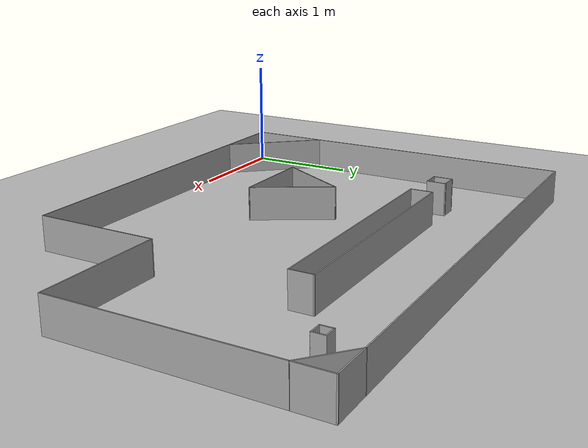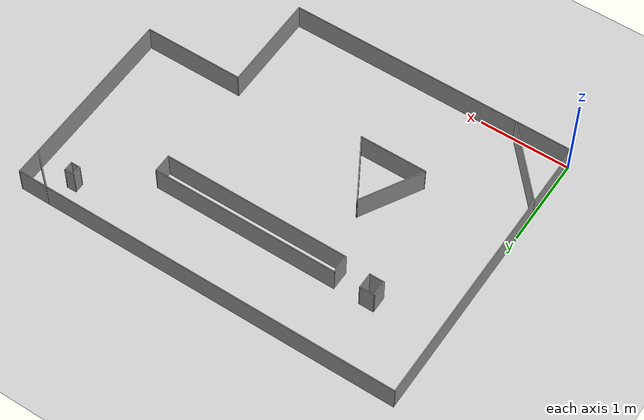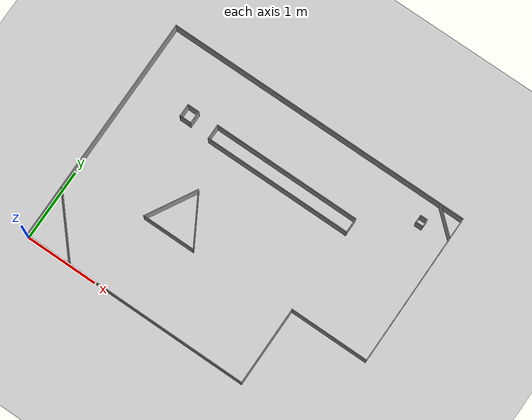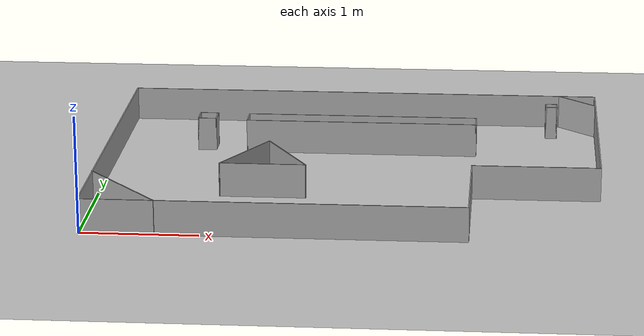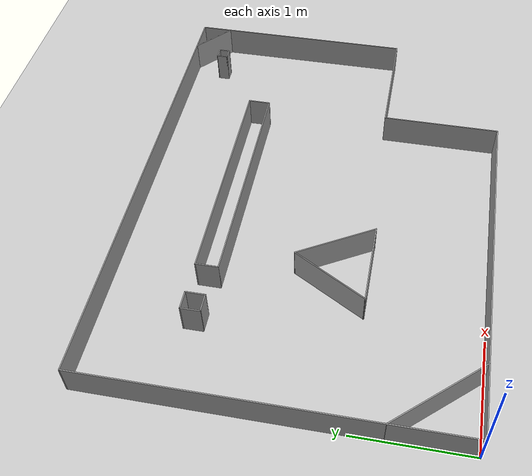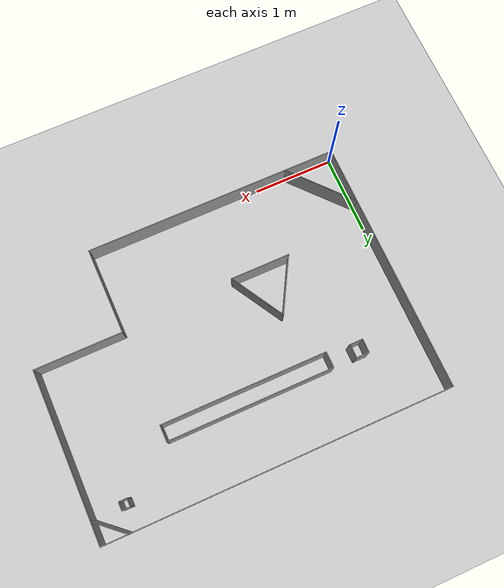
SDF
<sdf version='1.6'>
  <world name='default'>
    <light name='sun' type='directional'>
      <cast_shadows>1</cast_shadows>
      <pose frame=''>0 0 10 0 -0 0</pose>
      <diffuse>0.8 0.8 0.8 1</diffuse>
      <specular>0.1 0.1 0.1 1</specular>
      <attenuation>
        <range>1000</range>
        <constant>0.9</constant>
        <linear>0.01</linear>
        <quadratic>0.001</quadratic>
      </attenuation>
      <direction>-0.5 0.5 -1</direction>
    </light>

    <model name='ground_plane'>
      <static>1</static>
      <link name='link'>
        <collision name='collision'>
          <geometry>
            <plane>
              <normal>0 0 1</normal>
              <size>100 100</size>
            </plane>
          </geometry>
          <surface>
            <friction>
              <ode>
                <mu>100</mu>
                <mu2>50</mu2>
              </ode>
              <torsional>
                <ode/>
              </torsional>
            </friction>
            <contact>
              <ode/>
            </contact>
            <bounce/>
          </surface>
          <max_contacts>10</max_contacts>
        </collision>
        <visual name='visual'>
          <cast_shadows>0</cast_shadows>
          <geometry>
            <plane>
              <normal>0 0 1</normal>
              <size>100 100</size>
            </plane>
          </geometry>
          <material>
            <script>
              <uri>file://media/materials/scripts/gazebo.material</uri>
              <name>Gazebo/Grey</name>
            </script>
          </material>
        </visual>
        <self_collide>0</self_collide>
        <kinematic>0</kinematic>
        <gravity>1</gravity>
      </link>
    </model>

    <gravity>0 0 -9.8</gravity>
    <magnetic_field>6e-06 2.3e-05 -4.2e-05</magnetic_field>
    <atmosphere type='adiabatic'/>
    <physics name='default_physics' default='0' type='ode'>
      <max_step_size>0.001</max_step_size>
      <real_time_factor>1</real_time_factor>
      <real_time_update_rate>1000</real_time_update_rate>
    </physics>

    <scene>
      <ambient>0.4 0.4 0.4 1</ambient>
      <background>0.7 0.7 0.7 1</background>
      <shadows>1</shadows>
    </scene>

    <spherical_coordinates>
      <surface_model>EARTH_WGS84</surface_model>
      <latitude_deg>0</latitude_deg>
      <longitude_deg>0</longitude_deg>
      <elevation>0</elevation>
      <heading_deg>0</heading_deg>
    </spherical_coordinates>

    <model name='rss_box1'>
      <pose frame=''>2.155 1.605 0 0 -0 0</pose>
      <link name='Wall_0'>
        <collision name='Wall_0_Collision'>
          <geometry>
            <box>
              <size>3.22 0.01 0.3</size>
            </box>
          </geometry>
          <pose frame=''>0 0 0.15 0 -0 0</pose>
        </collision>
        <visual name='Wall_0_Visual'>
          <pose frame=''>0 0 0.15 0 -0 0</pose>
          <geometry>
            <box>
              <size>3.22 0.01 0.3</size>
            </box>
          </geometry>
          <material>
            <script>
              <uri>file://media/materials/scripts/gazebo.material</uri>
              <name>Gazebo/Grey</name>
            </script>
            <ambient>1 1 1 1</ambient>
          </material>
          <meta>
            <layer>0</layer>
          </meta>
        </visual>
        <pose frame=''>-0.55 -1.605 0 0 -0 0</pose>
      </link>
      <link name='Wall_11'>
        <collision name='Wall_11_Collision'>
          <geometry>
            <box>
              <size>0.449318 0.01 0.3</size>
            </box>
          </geometry>
          <pose frame=''>0 0 0.15 0 -0 0</pose>
        </collision>
        <visual name='Wall_11_Visual'>
          <pose frame=''>0 0 0.15 0 -0 0</pose>
          <geometry>
            <box>
              <size>0.449318 0.01 0.3</size>
            </box>
          </geometry>
          <material>
            <script>
              <uri>file://media/materials/scripts/gazebo.material</uri>
              <name>Gazebo/Grey</name>
            </script>
            <ambient>1 1 1 1</ambient>
          </material>
          <meta>
            <layer>0</layer>
          </meta>
        </visual>
        <pose frame=''>1.99 1.46 0 0 -0 2.42062</pose>
      </link>
      <link name='Wall_13'>
        <collision name='Wall_13_Collision'>
          <geometry>
            <box>
              <size>0.75 0.01 0.3</size>
            </box>
          </geometry>
          <pose frame=''>0 0 0.15 0 -0 0</pose>
        </collision>
        <visual name='Wall_13_Visual'>
          <pose frame=''>0 0 0.15 0 -0 0</pose>
          <geometry>
            <box>
              <size>0.75 0.01 0.3</size>
            </box>
          </geometry>
          <material>
            <script>
              <uri>file://media/materials/scripts/gazebo.material</uri>
              <name>Gazebo/Grey</name>
            </script>
            <ambient>1 1 1 1</ambient>
          </material>
          <meta>
            <layer>0</layer>
          </meta>
        </visual>
        <pose frame=''>-0.735 -0.595001 0 0 -0 3.14159</pose>
      </link>
      <link name='Wall_15'>
        <collision name='Wall_15_Collision'>
          <geometry>
            <box>
              <size>0.759551 0.01 0.3</size>
            </box>
          </geometry>
          <pose frame=''>0 0 0.15 0 -0 0</pose>
        </collision>
        <visual name='Wall_15_Visual'>
          <pose frame=''>0 0 0.15 0 -0 0</pose>
          <geometry>
            <box>
              <size>0.759551 0.01 0.3</size>
            </box>
          </geometry>
          <material>
            <script>
              <uri>file://media/materials/scripts/gazebo.material</uri>
              <name>Gazebo/Grey</name>
            </script>
            <ambient>1 1 1 1</ambient>
          </material>
          <meta>
            <layer>0</layer>
          </meta>
        </visual>
        <pose frame=''>-0.5525 -0.270501 0 0 -0 2.09474</pose>
      </link>
      <link name='Wall_16'>
        <collision name='Wall_16_Collision'>
          <geometry>
            <box>
              <size>0.754598 0.01 0.3</size>
            </box>
          </geometry>
          <pose frame=''>0 0 0.15 0 -0 0</pose>
        </collision>
        <visual name='Wall_16_Visual'>
          <pose frame=''>0 0 0.15 0 -0 0</pose>
          <geometry>
            <box>
              <size>0.754598 0.01 0.3</size>
            </box>
          </geometry>
          <material>
            <script>
              <uri>file://media/materials/scripts/gazebo.material</uri>
              <name>Gazebo/Grey</name>
            </script>
            <ambient>1 1 1 1</ambient>
          </material>
          <meta>
            <layer>0</layer>
          </meta>
        </visual>
        <pose frame=''>-0.9225 -0.270501 0 0 0 -2.08311</pose>
      </link>
      <link name='Wall_18'>
        <collision name='Wall_18_Collision'>
          <geometry>
            <box>
              <size>2.08 0.01 0.3</size>
            </box>
          </geometry>
          <pose frame=''>0 0 0.15 0 -0 0</pose>
        </collision>
        <visual name='Wall_18_Visual'>
          <pose frame=''>0 0 0.15 0 -0 0</pose>
          <geometry>
            <box>
              <size>2.08 0.01 0.3</size>
            </box>
          </geometry>
          <material>
            <script>
              <uri>file://media/materials/scripts/gazebo.material</uri>
              <name>Gazebo/Grey</name>
            </script>
            <ambient>1 1 1 1</ambient>
          </material>
          <meta>
            <layer>0</layer>
          </meta>
        </visual>
        <pose frame=''>0.03 0.854999 0 0 -0 3.14159</pose>
      </link>
      <link name='Wall_2'>
        <collision name='Wall_2_Collision'>
          <geometry>
            <box>
              <size>1.1 0.01 0.3</size>
            </box>
          </geometry>
          <pose frame=''>0 0 0.15 0 -0 0</pose>
        </collision>
        <visual name='Wall_2_Visual'>
          <pose frame=''>0 0 0.15 0 -0 0</pose>
          <geometry>
            <box>
              <size>1.1 0.01 0.3</size>
            </box>
          </geometry>
          <material>
            <script>
              <uri>file://media/materials/scripts/gazebo.material</uri>
              <name>Gazebo/Grey</name>
            </script>
            <ambient>1 1 1 1</ambient>
          </material>
          <meta>
            <layer>0</layer>
          </meta>
        </visual>
        <pose frame=''>1.055 -1.06 0 0 -0 1.5708</pose>
      </link>
      <link name='Wall_20'>
        <collision name='Wall_20_Collision'>
          <geometry>
            <box>
              <size>0.21 0.01 0.3</size>
            </box>
          </geometry>
          <pose frame=''>0 0 0.15 0 -0 0</pose>
        </collision>
        <visual name='Wall_20_Visual'>
          <pose frame=''>0 0 0.15 0 -0 0</pose>
          <geometry>
            <box>
              <size>0.21 0.01 0.3</size>
            </box>
          </geometry>
          <material>
            <script>
              <uri>file://media/materials/scripts/gazebo.material</uri>
              <name>Gazebo/Grey</name>
            </script>
            <ambient>1 1 1 1</ambient>
          </material>
          <meta>
            <layer>0</layer>
          </meta>
        </visual>
        <pose frame=''>-1.005 0.754999 0 0 0 -1.5708</pose>
      </link>
      <link name='Wall_21'>
        <collision name='Wall_21_Collision'>
          <geometry>
            <box>
              <size>2.08 0.01 0.3</size>
            </box>
          </geometry>
          <pose frame=''>0 0 0.15 0 -0 0</pose>
        </collision>
        <visual name='Wall_21_Visual'>
          <pose frame=''>0 0 0.15 0 -0 0</pose>
          <geometry>
            <box>
              <size>2.08 0.01 0.3</size>
            </box>
          </geometry>
          <material>
            <script>
              <uri>file://media/materials/scripts/gazebo.material</uri>
              <name>Gazebo/Grey</name>
            </script>
            <ambient>1 1 1 1</ambient>
          </material>
          <meta>
            <layer>0</layer>
          </meta>
        </visual>
        <pose frame=''>0.03 0.654999 0 0 -0 0</pose>
      </link>
      <link name='Wall_22'>
        <collision name='Wall_22_Collision'>
          <geometry>
            <box>
              <size>0.21 0.01 0.3</size>
            </box>
          </geometry>
          <pose frame=''>0 0 0.15 0 -0 0</pose>
        </collision>
        <visual name='Wall_22_Visual'>
          <pose frame=''>0 0 0.15 0 -0 0</pose>
          <geometry>
            <box>
              <size>0.21 0.01 0.3</size>
            </box>
          </geometry>
          <material>
            <script>
              <uri>file://media/materials/scripts/gazebo.material</uri>
              <name>Gazebo/Grey</name>
            </script>
            <ambient>1 1 1 1</ambient>
          </material>
          <meta>
            <layer>0</layer>
          </meta>
        </visual>
        <pose frame=''>1.065 0.754999 0 0 -0 1.5708</pose>
      </link>
      <link name='Wall_24'>
        <collision name='Wall_24_Collision'>
          <geometry>
            <box>
              <size>0.11 0.01 0.3</size>
            </box>
          </geometry>
          <pose frame=''>0 0 0.15 0 -0 0</pose>
        </collision>
        <visual name='Wall_24_Visual'>
          <pose frame=''>0 0 0.15 0 -0 0</pose>
          <geometry>
            <box>
              <size>0.11 0.01 0.3</size>
            </box>
          </geometry>
          <material>
            <script>
              <uri>file://media/materials/scripts/gazebo.material</uri>
              <name>Gazebo/Grey</name>
            </script>
            <ambient>1 1 1 1</ambient>
          </material>
          <meta>
            <layer>0</layer>
          </meta>
        </visual>
        <pose frame=''>1.8 1.295 0 0 0 -1.5708</pose>
      </link>
      <link name='Wall_26'>
        <collision name='Wall_26_Collision'>
          <geometry>
            <box>
              <size>0.11 0.01 0.3</size>
            </box>
          </geometry>
          <pose frame=''>0 0 0.15 0 -0 0</pose>
        </collision>
        <visual name='Wall_26_Visual'>
          <pose frame=''>0 0 0.15 0 -0 0</pose>
          <geometry>
            <box>
              <size>0.11 0.01 0.3</size>
            </box>
          </geometry>
          <material>
            <script>
              <uri>file://media/materials/scripts/gazebo.material</uri>
              <name>Gazebo/Grey</name>
            </script>
            <ambient>1 1 1 1</ambient>
          </material>
          <meta>
            <layer>0</layer>
          </meta>
        </visual>
        <pose frame=''>1.75 1.345 0 0 -0 3.14159</pose>
      </link>
      <link name='Wall_27'>
        <collision name='Wall_27_Collision'>
          <geometry>
            <box>
              <size>0.11 0.01 0.3</size>
            </box>
          </geometry>
          <pose frame=''>0 0 0.15 0 -0 0</pose>
        </collision>
        <visual name='Wall_27_Visual'>
          <pose frame=''>0 0 0.15 0 -0 0</pose>
          <geometry>
            <box>
              <size>0.11 0.01 0.3</size>
            </box>
          </geometry>
          <material>
            <script>
              <uri>file://media/materials/scripts/gazebo.material</uri>
              <name>Gazebo/Grey</name>
            </script>
            <ambient>1 1 1 1</ambient>
          </material>
          <meta>
            <layer>0</layer>
          </meta>
        </visual>
        <pose frame=''>1.7 1.295 0 0 0 -1.5708</pose>
      </link>
      <link name='Wall_3'>
        <collision name='Wall_3_Collision'>
          <geometry>
            <box>
              <size>1.11 0.01 0.3</size>
            </box>
          </geometry>
          <pose frame=''>0 0 0.15 0 -0 0</pose>
        </collision>
        <visual name='Wall_3_Visual'>
          <pose frame=''>0 0 0.15 0 -0 0</pose>
          <geometry>
            <box>
              <size>1.11 0.01 0.3</size>
            </box>
          </geometry>
          <material>
            <script>
              <uri>file://media/materials/scripts/gazebo.material</uri>
              <name>Gazebo/Grey</name>
            </script>
            <ambient>1 1 1 1</ambient>
          </material>
          <meta>
            <layer>0</layer>
          </meta>
        </visual>
        <pose frame=''>1.605 -0.515001 0 0 -0 0</pose>
      </link>
      <link name='Wall_30'>
        <collision name='Wall_30_Collision'>
          <geometry>
            <box>
              <size>0.11 0.01 0.3</size>
            </box>
          </geometry>
          <pose frame=''>0 0 0.15 0 -0 0</pose>
        </collision>
        <visual name='Wall_30_Visual'>
          <pose frame=''>0 0 0.15 0 -0 0</pose>
          <geometry>
            <box>
              <size>0.11 0.01 0.3</size>
            </box>
          </geometry>
          <material>
            <script>
              <uri>file://media/materials/scripts/gazebo.material</uri>
              <name>Gazebo/Grey</name>
            </script>
            <ambient>1 1 1 1</ambient>
          </material>
          <meta>
            <layer>0</layer>
          </meta>
        </visual>
        <pose frame=''>1.75 1.245 0 0 -0 0</pose>
      </link>
      <link name='Wall_32'>
        <collision name='Wall_32_Collision'>
          <geometry>
            <box>
              <size>0.17 0.01 0.3</size>
            </box>
          </geometry>
          <pose frame=''>0 0 0.15 0 -0 0</pose>
        </collision>
        <visual name='Wall_32_Visual'>
          <pose frame=''>0 0 0.15 0 -0 0</pose>
          <geometry>
            <box>
              <size>0.17 0.01 0.3</size>
            </box>
          </geometry>
          <material>
            <script>
              <uri>file://media/materials/scripts/gazebo.material</uri>
              <name>Gazebo/Grey</name>
            </script>
            <ambient>1 1 1 1</ambient>
          </material>
          <meta>
            <layer>0</layer>
          </meta>
        </visual>
        <pose frame=''>-1.375 0.859999 0 0 -0 0</pose>
      </link>
      <link name='Wall_36'>
        <collision name='Wall_36_Collision'>
          <geometry>
            <box>
              <size>0.18 0.01 0.3</size>
            </box>
          </geometry>
          <pose frame=''>0 0 0.15 0 -0 0</pose>
        </collision>
        <visual name='Wall_36_Visual'>
          <pose frame=''>0 0 0.15 0 -0 0</pose>
          <geometry>
            <box>
              <size>0.18 0.01 0.3</size>
            </box>
          </geometry>
          <material>
            <script>
              <uri>file://media/materials/scripts/gazebo.material</uri>
              <name>Gazebo/Grey</name>
            </script>
            <ambient>1 1 1 1</ambient>
          </material>
          <meta>
            <layer>0</layer>
          </meta>
        </visual>
        <pose frame=''>-1.455 0.775 0 0 0 -1.5708</pose>
      </link>
      <link name='Wall_37'>
        <collision name='Wall_37_Collision'>
          <geometry>
            <box>
              <size>0.17 0.01 0.3</size>
            </box>
          </geometry>
          <pose frame=''>0 0 0.15 0 -0 0</pose>
        </collision>
        <visual name='Wall_37_Visual'>
          <pose frame=''>0 0 0.15 0 -0 0</pose>
          <geometry>
            <box>
              <size>0.17 0.01 0.3</size>
            </box>
          </geometry>
          <material>
            <script>
              <uri>file://media/materials/scripts/gazebo.material</uri>
              <name>Gazebo/Grey</name>
            </script>
            <ambient>1 1 1 1</ambient>
          </material>
          <meta>
            <layer>0</layer>
          </meta>
        </visual>
        <pose frame=''>-1.375 0.69 0 0 -0 0</pose>
      </link>
      <link name='Wall_39'>
        <collision name='Wall_39_Collision'>
          <geometry>
            <box>
              <size>0.18 0.01 0.3</size>
            </box>
          </geometry>
          <pose frame=''>0 0 0.15 0 -0 0</pose>
        </collision>
        <visual name='Wall_39_Visual'>
          <pose frame=''>0 0 0.15 0 -0 0</pose>
          <geometry>
            <box>
              <size>0.18 0.01 0.3</size>
            </box>
          </geometry>
          <material>
            <script>
              <uri>file://media/materials/scripts/gazebo.material</uri>
              <name>Gazebo/Grey</name>
            </script>
            <ambient>1 1 1 1</ambient>
          </material>
          <meta>
            <layer>0</layer>
          </meta>
        </visual>
        <pose frame=''>-1.295 0.775 0 0 -0 1.5708</pose>
      </link>
      <link name='Wall_4'>
        <collision name='Wall_4_Collision'>
          <geometry>
            <box>
              <size>2.13 0.01 0.3</size>
            </box>
          </geometry>
          <pose frame=''>0 0 0.15 0 -0 0</pose>
        </collision>
        <visual name='Wall_4_Visual'>
          <pose frame=''>0 0 0.15 0 -0 0</pose>
          <geometry>
            <box>
              <size>2.13 0.01 0.3</size>
            </box>
          </geometry>
          <material>
            <script>
              <uri>file://media/materials/scripts/gazebo.material</uri>
              <name>Gazebo/Grey</name>
            </script>
            <ambient>1 1 1 1</ambient>
          </material>
          <meta>
            <layer>0</layer>
          </meta>
        </visual>
        <pose frame=''>2.155 0.545 0 0 -0 1.5708</pose>
      </link>
      <link name='Wall_6'>
        <collision name='Wall_6_Collision'>
          <geometry>
            <box>
              <size>4.32 0.01 0.3</size>
            </box>
          </geometry>
          <pose frame=''>0 0 0.15 0 -0 0</pose>
        </collision>
        <visual name='Wall_6_Visual'>
          <pose frame=''>0 0 0.15 0 -0 0</pose>
          <geometry>
            <box>
              <size>4.32 0.01 0.3</size>
            </box>
          </geometry>
          <material>
            <script>
              <uri>file://media/materials/scripts/gazebo.material</uri>
              <name>Gazebo/Grey</name>
            </script>
            <ambient>1 1 1 1</ambient>
          </material>
          <meta>
            <layer>0</layer>
          </meta>
        </visual>
        <pose frame=''>0 1.605 0 0 -0 3.14159</pose>
      </link>
      <link name='Wall_7'>
        <collision name='Wall_7_Collision'>
          <geometry>
            <box>
              <size>3.22 0.01 0.3</size>
            </box>
          </geometry>
          <pose frame=''>0 0 0.15 0 -0 0</pose>
        </collision>
        <visual name='Wall_7_Visual'>
          <pose frame=''>0 0 0.15 0 -0 0</pose>
          <geometry>
            <box>
              <size>3.22 0.01 0.3</size>
            </box>
          </geometry>
          <material>
            <script>
              <uri>file://media/materials/scripts/gazebo.material</uri>
              <name>Gazebo/Grey</name>
            </script>
            <ambient>1 1 1 1</ambient>
          </material>
          <meta>
            <layer>0</layer>
          </meta>
        </visual>
        <pose frame=''>-2.155 -1e-06 0 0 0 -1.5708</pose>
      </link>
      <link name='Wall_9'>
        <collision name='Wall_9_Collision'>
          <geometry>
            <box>
              <size>0.966713 0.01 0.3</size>
            </box>
          </geometry>
          <pose frame=''>0 0 0.15 0 -0 0</pose>
        </collision>
        <visual name='Wall_9_Visual'>
          <pose frame=''>0 0 0.15 0 -0 0</pose>
          <geometry>
            <box>
              <size>0.966713 0.01 0.3</size>
            </box>
          </geometry>
          <material>
            <script>
              <uri>file://media/materials/scripts/gazebo.material</uri>
              <name>Gazebo/Grey</name>
            </script>
            <ambient>1 1 1 1</ambient>
          </material>
          <meta>
            <layer>0</layer>
          </meta>
        </visual>
        <pose frame=''>-1.84 -1.245 0 0 0 -0.851966</pose>
      </link>
      <static>1</static>
    </model>

    <gui fullscreen='0'>
      <camera name='user_camera'>
        <pose frame=''>10.5453 -1.58182 6.70959 0 0.735643 2.82019</pose>
        <view_controller>orbit</view_controller>
        <projection_type>perspective</projection_type>
      </camera>
    </gui>
  </world>
</sdf>
